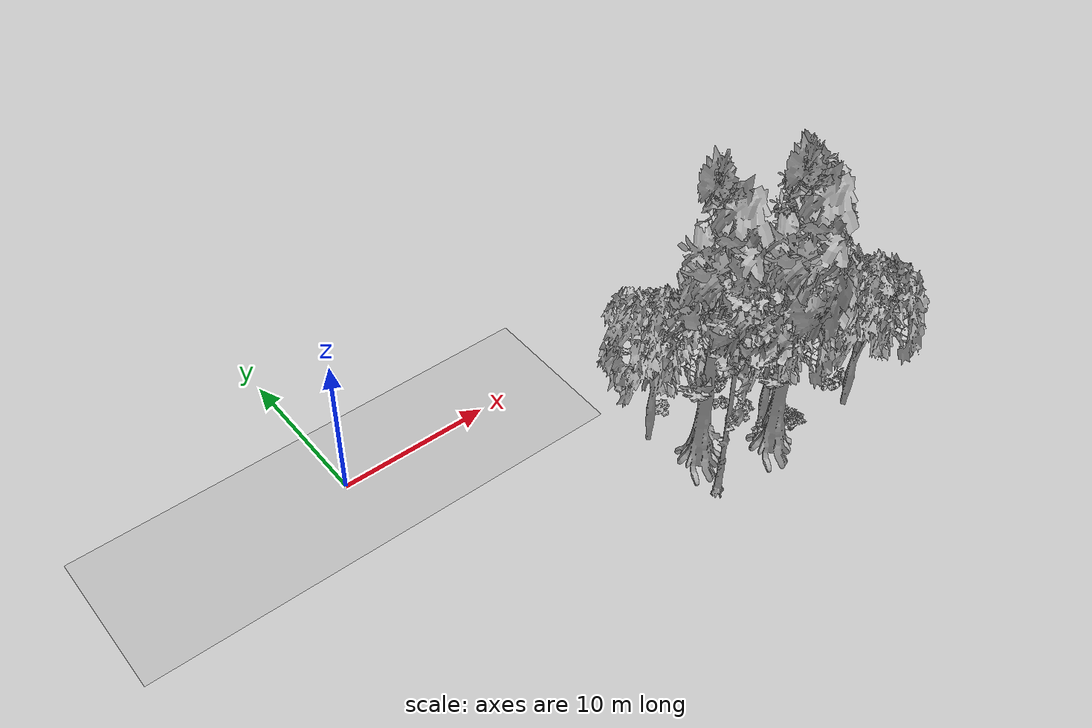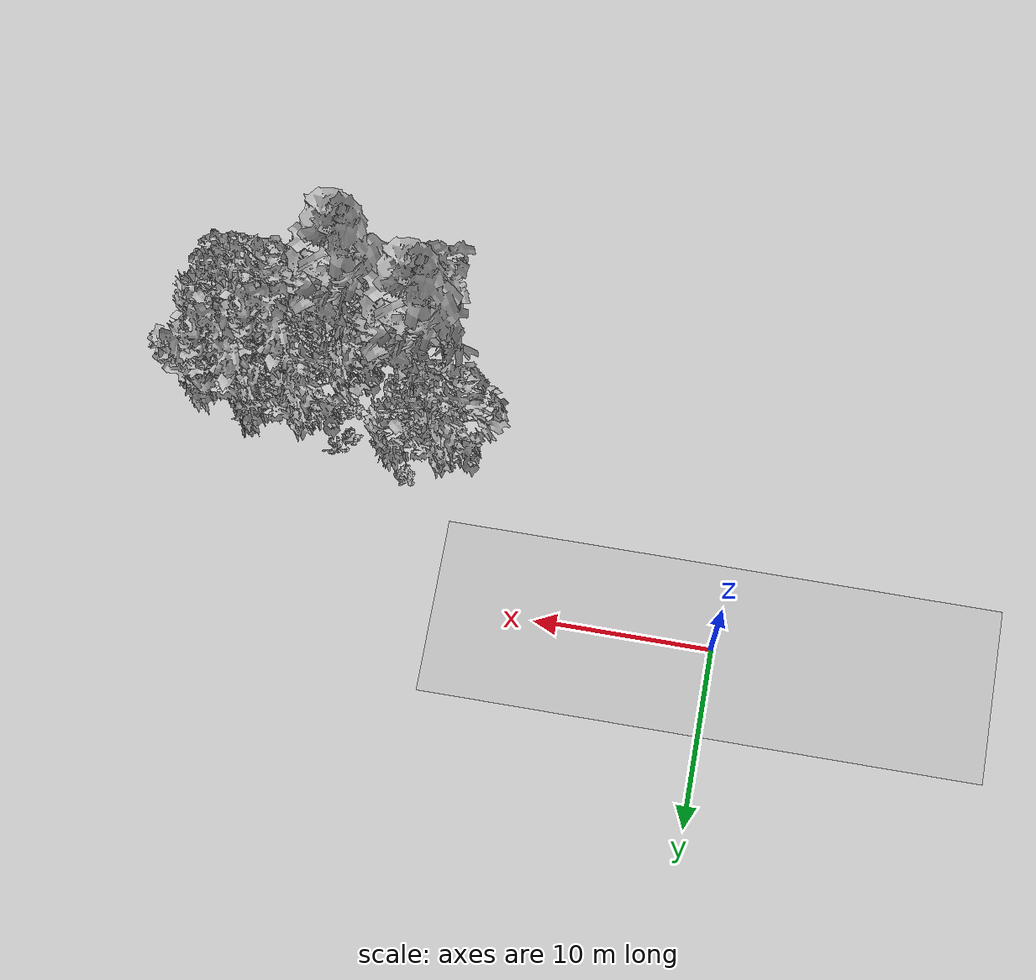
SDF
<sdf version="1.7">
 <world name="default">
  <model name="ground_plane">
   <static>1</static>
   <link name="link">
    <collision name="collision">
     <geometry><plane><normal>0 0 1</normal><size>100 100</size></plane></geometry>
     <surface><contact><ode><min_depth>0.01</min_depth><max_vel>0</max_vel></ode></contact></surface>
    </collision>
    <visual name="grass">
     <cast_shadows>0</cast_shadows>
     <geometry>
      <mesh>
       <scale>0.5814285714285714 0.18142857142857144 0.1</scale>
       <uri>file://grass_plane/meshes/grass_plane.dae</uri>
      </mesh>
     </geometry>
    </visual>
   </link>
  </model>
  <model name="Tree 38">
   <static>1</static>
   <pose>17.38554257768574 -13.555301239482468 0 1.57079 -0 0</pose>
   <link name="link">
    <collision name="collision">
     <geometry><mesh><scale>3.5 5 3.5</scale><uri>model://tree_9/meshes/tree_9.obj</uri></mesh></geometry>
    </collision>
    <visual name="visual">
     <geometry><mesh><scale>3.5 5 3.5</scale><uri>model://tree_9/meshes/tree_9.obj</uri></mesh></geometry>
    </visual>
   </link>
  </model>
  <model name="Tree 121">
   <static>1</static>
   <pose>16.601893000318128 -8.173678578979754 0 1.57079 -0 0</pose>
   <link name="link">
    <collision name="collision">
     <geometry><mesh><scale>3.5 5 3.5</scale><uri>model://tree_2/meshes/tree_2.obj</uri></mesh></geometry>
    </collision>
    <visual name="visual">
     <geometry><mesh><scale>3.5 5 3.5</scale><uri>model://tree_2/meshes/tree_2.obj</uri></mesh></geometry>
    </visual>
   </link>
  </model>
  <model name="Tree 124">
   <static>1</static>
   <pose>22.6621453004049 -11.671881435236777 0 1.57079 -0 0</pose>
   <link name="link">
    <collision name="collision">
     <geometry><mesh><scale>3.5 5 3.5</scale><uri>model://tree_2/meshes/tree_2.obj</uri></mesh></geometry>
    </collision>
    <visual name="visual">
     <geometry><mesh><scale>3.5 5 3.5</scale><uri>model://tree_2/meshes/tree_2.obj</uri></mesh></geometry>
    </visual>
   </link>
  </model>
  <model name="Tree 157">
   <static>1</static>
   <pose>25.962449914142496 -9.82692217798202 0 1.57079 -0 0</pose>
   <link name="link">
    <collision name="collision">
     <geometry><mesh><scale>3.5 5 3.5</scale><uri>model://tree_9/meshes/tree_9.obj</uri></mesh></geometry>
    </collision>
    <visual name="visual">
     <geometry><mesh><scale>3.5 5 3.5</scale><uri>model://tree_9/meshes/tree_9.obj</uri></mesh></geometry>
    </visual>
   </link>
  </model>
  <model name="Tree 158">
   <static>1</static>
   <pose>28.217095799646685 -13.475286155890178 0 1.57079 -0 0</pose>
   <link name="link">
    <collision name="collision">
     <geometry><mesh><scale>3.5 5 3.5</scale><uri>model://tree_2/meshes/tree_2.obj</uri></mesh></geometry>
    </collision>
    <visual name="visual">
     <geometry><mesh><scale>3.5 5 3.5</scale><uri>model://tree_2/meshes/tree_2.obj</uri></mesh></geometry>
    </visual>
   </link>
  </model>
  <model name="Tree 178">
   <static>1</static>
   <pose>24.343473467224513 -9.00487921821242 0 1.57079 -0 0</pose>
   <link name="link">
    <collision name="collision">
     <geometry><mesh><scale>3.5 5 3.5</scale><uri>model://tree_2/meshes/tree_2.obj</uri></mesh></geometry>
    </collision>
    <visual name="visual">
     <geometry><mesh><scale>3.5 5 3.5</scale><uri>model://tree_2/meshes/tree_2.obj</uri></mesh></geometry>
    </visual>
   </link>
  </model>
  <model name="Tree 195">
   <static>1</static>
   <pose>27.27780293994948 -9.748336802939736 0 1.57079 -0 0</pose>
   <link name="link">
    <collision name="collision">
     <geometry><mesh><scale>3.5 5 3.5</scale><uri>model://tree_2/meshes/tree_2.obj</uri></mesh></geometry>
    </collision>
    <visual name="visual">
     <geometry><mesh><scale>3.5 5 3.5</scale><uri>model://tree_2/meshes/tree_2.obj</uri></mesh></geometry>
    </visual>
   </link>
  </model>
  <model name="Tree 251">
   <static>1</static>
   <pose>22.01920504809415 -13.189087345459955 0 1.57079 -0 0</pose>
   <link name="link">
    <collision name="collision">
     <geometry><mesh><scale>3.5 5 3.5</scale><uri>model://tree_4/meshes/tree_4.obj</uri></mesh></geometry>
    </collision>
    <visual name="visual">
     <geometry><mesh><scale>3.5 5 3.5</scale><uri>model://tree_4/meshes/tree_4.obj</uri></mesh></geometry>
    </visual>
   </link>
  </model>
  <model name="Tree 408">
   <static>1</static>
   <pose>28.12803189090242 -8.370631426051613 0 1.57079 -0 0</pose>
   <link name="link">
    <collision name="collision">
     <geometry><mesh><scale>3.5 5 3.5</scale><uri>model://tree_9/meshes/tree_9.obj</uri></mesh></geometry>
    </collision>
    <visual name="visual">
     <geometry><mesh><scale>3.5 5 3.5</scale><uri>model://tree_9/meshes/tree_9.obj</uri></mesh></geometry>
    </visual>
   </link>
  </model>
  <model name="Tree 445">
   <static>1</static>
   <pose>17.848599606588934 -11.274645786689767 0 1.57079 -0 0</pose>
   <link name="link">
    <collision name="collision">
     <geometry><mesh><scale>3.5 5 3.5</scale><uri>model://tree_4/meshes/tree_4.obj</uri></mesh></geometry>
    </collision>
    <visual name="visual">
     <geometry><mesh><scale>3.5 5 3.5</scale><uri>model://tree_4/meshes/tree_4.obj</uri></mesh></geometry>
    </visual>
   </link>
  </model>
  <model name="Bush 39">
   <static>1</static>
   <pose>24.91688795537199 -12.718709059841286 0 1.57079 -0 0</pose>
   <link name="link">
    <collision name="collision">
     <geometry><mesh><scale>2 2 2</scale><uri>model://bush_2/meshes/bush_2.obj</uri></mesh></geometry>
     <surface><contact><collide_without_contact>false</collide_without_contact></contact></surface>
    </collision>
    <visual name="visual">
     <geometry><mesh><scale>2 2 2</scale><uri>model://bush_2/meshes/bush_2.obj</uri></mesh></geometry>
    </visual>
   </link>
  </model>
  <model name="Bush 46">
   <static>1</static>
   <pose>24.05961599059242 -13.006654521973797 0 1.57079 -0 0</pose>
   <link name="link">
    <collision name="collision">
     <geometry><mesh><scale>2 2 2</scale><uri>model://bush_4/meshes/bush_4.obj</uri></mesh></geometry>
     <surface><contact><collide_without_contact>false</collide_without_contact></contact></surface>
    </collision>
    <visual name="visual">
     <geometry><mesh><scale>2 2 2</scale><uri>model://bush_4/meshes/bush_4.obj</uri></mesh></geometry>
    </visual>
   </link>
  </model>
  <model name="Bush 48">
   <static>1</static>
   <pose>22.354395705396087 -10.360165489635797 0 1.57079 -0 0</pose>
   <link name="link">
    <collision name="collision">
     <geometry><mesh><scale>2 2 2</scale><uri>model://bush_3/meshes/bush_3.obj</uri></mesh></geometry>
     <surface><contact><collide_without_contact>false</collide_without_contact></contact></surface>
    </collision>
    <visual name="visual">
     <geometry><mesh><scale>2 2 2</scale><uri>model://bush_3/meshes/bush_3.obj</uri></mesh></geometry>
    </visual>
   </link>
  </model>
  <model name="Bush 53">
   <static>1</static>
   <pose>28.604926874145292 -11.935390794935795 0 1.57079 -0 0</pose>
   <link name="link">
    <collision name="collision">
     <geometry><mesh><scale>2 2 2</scale><uri>model://bush_2/meshes/bush_2.obj</uri></mesh></geometry>
     <surface><contact><collide_without_contact>false</collide_without_contact></contact></surface>
    </collision>
    <visual name="visual">
     <geometry><mesh><scale>2 2 2</scale><uri>model://bush_2/meshes/bush_2.obj</uri></mesh></geometry>
    </visual>
   </link>
  </model>
  <model name="Bush 89">
   <static>1</static>
   <pose>22.2962070318557 -12.781979440399333 0 1.57079 -0 0</pose>
   <link name="link">
    <collision name="collision">
     <geometry><mesh><scale>2 2 2</scale><uri>model://bush_1/meshes/bush_1.obj</uri></mesh></geometry>
     <surface><contact><collide_without_contact>false</collide_without_contact></contact></surface>
    </collision>
    <visual name="visual">
     <geometry><mesh><scale>2 2 2</scale><uri>model://bush_1/meshes/bush_1.obj</uri></mesh></geometry>
    </visual>
   </link>
  </model>
  <model name="Bush 97">
   <static>1</static>
   <pose>25.77359996394634 -10.261158004803995 0 1.57079 -0 0</pose>
   <link name="link">
    <collision name="collision">
     <geometry><mesh><scale>2 2 2</scale><uri>model://bush_0/meshes/bush_0.obj</uri></mesh></geometry>
     <surface><contact><collide_without_contact>false</collide_without_contact></contact></surface>
    </collision>
    <visual name="visual">
     <geometry><mesh><scale>2 2 2</scale><uri>model://bush_0/meshes/bush_0.obj</uri></mesh></geometry>
    </visual>
   </link>
  </model>
  <model name="Bush 112">
   <static>1</static>
   <pose>23.1377768008673 -9.972614366100423 0 1.57079 -0 0</pose>
   <link name="link">
    <collision name="collision">
     <geometry><mesh><scale>2 2 2</scale><uri>model://bush_2/meshes/bush_2.obj</uri></mesh></geometry>
     <surface><contact><collide_without_contact>false</collide_without_contact></contact></surface>
    </collision>
    <visual name="visual">
     <geometry><mesh><scale>2 2 2</scale><uri>model://bush_2/meshes/bush_2.obj</uri></mesh></geometry>
    </visual>
   </link>
  </model>
  <model name="Bush 138">
   <static>1</static>
   <pose>22.744755164488183 -7.9836576125457785 0 1.57079 -0 0</pose>
   <link name="link">
    <collision name="collision">
     <geometry><mesh><scale>2 2 2</scale><uri>model://bush_4/meshes/bush_4.obj</uri></mesh></geometry>
     <surface><contact><collide_without_contact>false</collide_without_contact></contact></surface>
    </collision>
    <visual name="visual">
     <geometry><mesh><scale>2 2 2</scale><uri>model://bush_4/meshes/bush_4.obj</uri></mesh></geometry>
    </visual>
   </link>
  </model>
  <model name="Bush 164">
   <static>1</static>
   <pose>29.200672849709022 -12.347892705020804 0 1.57079 -0 0</pose>
   <link name="link">
    <collision name="collision">
     <geometry><mesh><scale>2 2 2</scale><uri>model://bush_0/meshes/bush_0.obj</uri></mesh></geometry>
     <surface><contact><collide_without_contact>false</collide_without_contact></contact></surface>
    </collision>
    <visual name="visual">
     <geometry><mesh><scale>2 2 2</scale><uri>model://bush_0/meshes/bush_0.obj</uri></mesh></geometry>
    </visual>
   </link>
  </model>
  <model name="Bush 256">
   <static>1</static>
   <pose>22.117961230918766 -8.865272456664329 0 1.57079 -0 0</pose>
   <link name="link">
    <collision name="collision">
     <geometry><mesh><scale>2 2 2</scale><uri>model://bush_2/meshes/bush_2.obj</uri></mesh></geometry>
     <surface><contact><collide_without_contact>false</collide_without_contact></contact></surface>
    </collision>
    <visual name="visual">
     <geometry><mesh><scale>2 2 2</scale><uri>model://bush_2/meshes/bush_2.obj</uri></mesh></geometry>
    </visual>
   </link>
  </model>
  <model name="Bush 269">
   <static>1</static>
   <pose>18.70309660738313 -6.970244135560677 0 1.57079 -0 0</pose>
   <link name="link">
    <collision name="collision">
     <geometry><mesh><scale>2 2 2</scale><uri>model://bush_3/meshes/bush_3.obj</uri></mesh></geometry>
     <surface><contact><collide_without_contact>false</collide_without_contact></contact></surface>
    </collision>
    <visual name="visual">
     <geometry><mesh><scale>2 2 2</scale><uri>model://bush_3/meshes/bush_3.obj</uri></mesh></geometry>
    </visual>
   </link>
  </model>
  <model name="Bush 274">
   <static>1</static>
   <pose>24.253305399623315 -12.516352189652686 0 1.57079 -0 0</pose>
   <link name="link">
    <collision name="collision">
     <geometry><mesh><scale>2 2 2</scale><uri>model://bush_4/meshes/bush_4.obj</uri></mesh></geometry>
     <surface><contact><collide_without_contact>false</collide_without_contact></contact></surface>
    </collision>
    <visual name="visual">
     <geometry><mesh><scale>2 2 2</scale><uri>model://bush_4/meshes/bush_4.obj</uri></mesh></geometry>
    </visual>
   </link>
  </model>
 </world>
</sdf>
